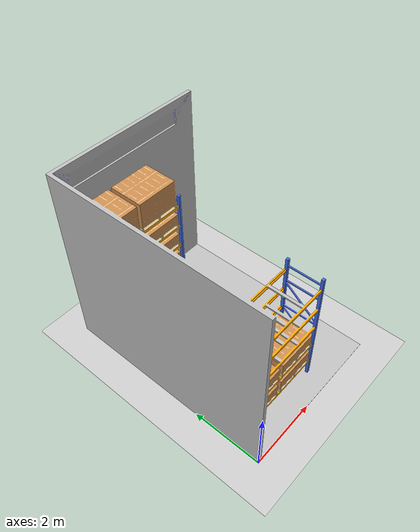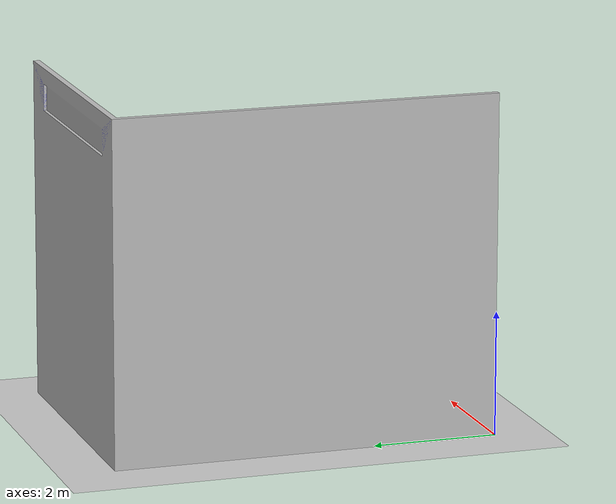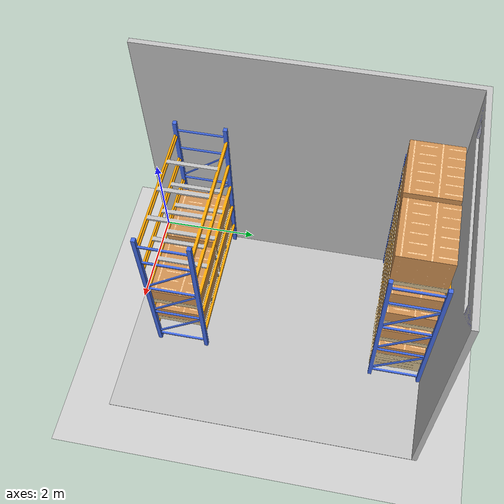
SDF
<?xml version="1.0"?>
<sdf version="1.4">
  <world name="default">
    <include>
      <uri>model://ground_plane</uri>
    </include>
    <include>
      <uri>model://sun</uri>
    </include>
    <include>
       <uri>model://warehouse</uri>
    </include>

  </world>
</sdf>

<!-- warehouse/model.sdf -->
<sdf version="1.5">
  <model name="My Model">
    <static>true</static>
    <link name="link">
      <collision name="collision">
        <geometry>
          <mesh>
            <uri>model://warehouse/meshes/warehouse.dae</uri>
          </mesh>
        </geometry>
      </collision>
      <visual name="visual">
        <geometry>
          <mesh>
            <uri>model://warehouse/meshes/warehouse.dae</uri>
          </mesh>
        </geometry>
      </visual>
    </link>
  </model>
</sdf>
